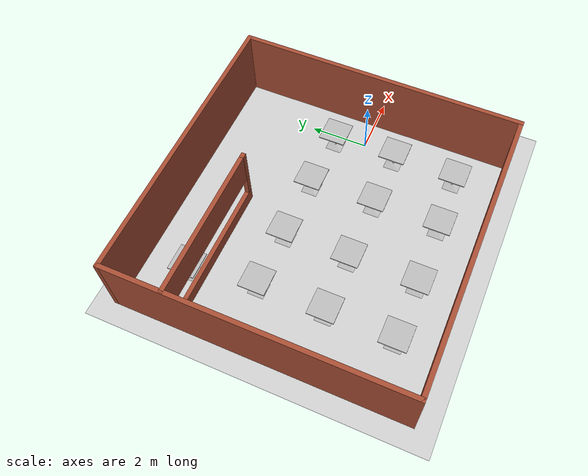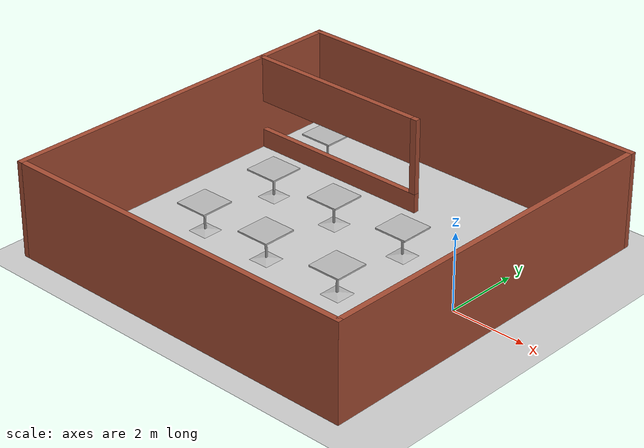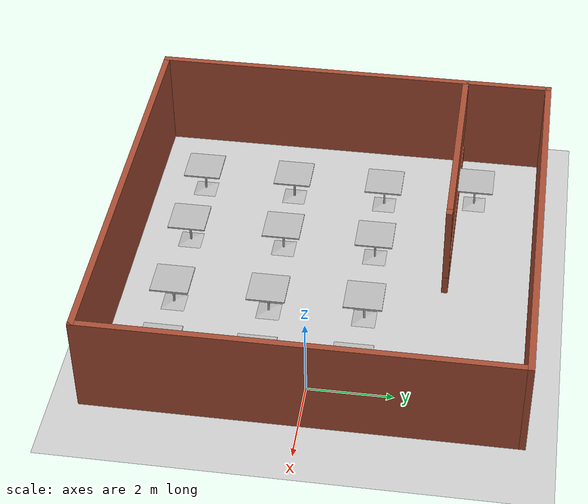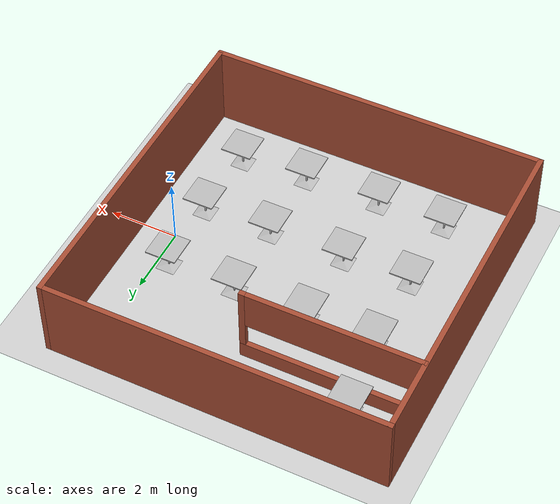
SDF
<sdf version="1.7">
 <world name="default">
  <plugin name="gazebo_ros_state" filename="libgazebo_ros_state.so"/>
  <light name="sun" type="directional">
   <pose>0 0 10 0 -0 0</pose>
   <diffuse>0.8 0.8 0.8 1</diffuse>
   <specular>0.2 0.2 0.2 1</specular>
   <attenuation>
    <range>1000</range>
    <constant>0.9</constant>
    <linear>0.01</linear>
    <quadratic>0.001</quadratic>
   </attenuation>
   <direction>-0.5 0.1 -0.9</direction>
   <spot><inner_angle>0</inner_angle><outer_angle>0</outer_angle><falloff>0</falloff></spot>
  </light>
  <model name="ground_plane">
   <static>1</static>
   <link name="link">
    <collision name="collision">
     <geometry><plane><normal>0 0 1</normal><size>100 100</size></plane></geometry>
     <surface><friction><ode><mu>100</mu><mu2>50</mu2></ode></friction></surface>
    </collision>
    <visual name="visual">
     <cast_shadows>0</cast_shadows>
     <geometry><plane><normal>0 0 1</normal><size>100 100</size></plane></geometry>
     <material>
      <script><uri>file://media/materials/scripts/gazebo.material</uri><name>Gazebo/Grey</name></script>
     </material>
    </visual>
   </link>
  </model>
  <gravity>0 0 -9.8</gravity>
  <magnetic_field>6e-06 2.3e-05 -4.2e-05</magnetic_field>
  <atmosphere type="adiabatic"/>
  <physics type="ode">
   <max_step_size>0.001</max_step_size>
   <real_time_factor>1</real_time_factor>
   <real_time_update_rate>1000</real_time_update_rate>
  </physics>
  <scene><ambient>0.4 0.4 0.4 1</ambient><background>0.7 0.7 0.7 1</background><shadows>1</shadows></scene>
  <audio><device>default</device></audio>
  <spherical_coordinates>
   <surface_model>EARTH_WGS84</surface_model>
   <latitude_deg>0</latitude_deg>
   <longitude_deg>0</longitude_deg>
   <elevation>0</elevation>
   <heading_deg>0</heading_deg>
  </spherical_coordinates>
  <model name="cafe_table">
   <static>1</static>
   <link name="link">
    <collision name="surface">
     <pose>0 0 0.755 0 -0 0</pose>
     <geometry><box><size>0.913 0.913 0.04</size></box></geometry>
    </collision>
    <collision name="column">
     <pose>0 0 0.37 0 -0 0</pose>
     <geometry><box><size>0.042 0.042 0.74</size></box></geometry>
    </collision>
    <collision name="base">
     <pose>0 0 0.02 0 -0 0</pose>
     <geometry><box><size>0.56 0.56 0.04</size></box></geometry>
    </collision>
    <visual name="visual">
     <geometry><mesh><uri>model://cafe_table/meshes/cafe_table.dae</uri></mesh></geometry>
    </visual>
   </link>
   <pose>-6.96077 3.3195 0 0 -0 0</pose>
  </model>
  <model name="cafe_table_0">
   <static>1</static>
   <link name="link">
    <collision name="surface">
     <pose>0 0 0.755 0 -0 0</pose>
     <geometry><box><size>0.913 0.913 0.04</size></box></geometry>
    </collision>
    <collision name="column">
     <pose>0 0 0.37 0 -0 0</pose>
     <geometry><box><size>0.042 0.042 0.74</size></box></geometry>
    </collision>
    <collision name="base">
     <pose>0 0 0.02 0 -0 0</pose>
     <geometry><box><size>0.56 0.56 0.04</size></box></geometry>
    </collision>
    <visual name="visual">
     <geometry><mesh><uri>model://cafe_table/meshes/cafe_table.dae</uri></mesh></geometry>
    </visual>
   </link>
   <pose>-6.63265 1.04198 0 0 -0 0</pose>
  </model>
  <model name="cafe_table_0_clone">
   <static>1</static>
   <link name="link">
    <collision name="surface">
     <pose>0 0 0.755 0 -0 0</pose>
     <geometry><box><size>0.913 0.913 0.04</size></box></geometry>
    </collision>
    <collision name="column">
     <pose>0 0 0.37 0 -0 0</pose>
     <geometry><box><size>0.042 0.042 0.74</size></box></geometry>
    </collision>
    <collision name="base">
     <pose>0 0 0.02 0 -0 0</pose>
     <geometry><box><size>0.56 0.56 0.04</size></box></geometry>
    </collision>
    <visual name="visual">
     <geometry><mesh><uri>model://cafe_table/meshes/cafe_table.dae</uri></mesh></geometry>
    </visual>
   </link>
   <pose>-6.64571 -3.59313 0 0 -0 0</pose>
  </model>
  <model name="cafe_table_0_clone_0">
   <static>1</static>
   <link name="link">
    <collision name="surface">
     <pose>0 0 0.755 0 -0 0</pose>
     <geometry><box><size>0.913 0.913 0.04</size></box></geometry>
    </collision>
    <collision name="column">
     <pose>0 0 0.37 0 -0 0</pose>
     <geometry><box><size>0.042 0.042 0.74</size></box></geometry>
    </collision>
    <collision name="base">
     <pose>0 0 0.02 0 -0 0</pose>
     <geometry><box><size>0.56 0.56 0.04</size></box></geometry>
    </collision>
    <visual name="visual">
     <geometry><mesh><uri>model://cafe_table/meshes/cafe_table.dae</uri></mesh></geometry>
    </visual>
   </link>
   <pose>-6.64567 -1.27882 0 0 -0 0</pose>
  </model>
  <model name="cafe_table_0_clone_1">
   <static>1</static>
   <link name="link">
    <collision name="surface">
     <pose>0 0 0.755 0 -0 0</pose>
     <geometry><box><size>0.913 0.913 0.04</size></box></geometry>
    </collision>
    <collision name="column">
     <pose>0 0 0.37 0 -0 0</pose>
     <geometry><box><size>0.042 0.042 0.74</size></box></geometry>
    </collision>
    <collision name="base">
     <pose>0 0 0.02 0 -0 0</pose>
     <geometry><box><size>0.56 0.56 0.04</size></box></geometry>
    </collision>
    <visual name="visual">
     <geometry><mesh><uri>model://cafe_table/meshes/cafe_table.dae</uri></mesh></geometry>
    </visual>
   </link>
   <pose>-4.63297 -1.24114 0 0 -0 0</pose>
  </model>
  <model name="cafe_table_0_clone_2">
   <static>1</static>
   <link name="link">
    <collision name="surface">
     <pose>0 0 0.755 0 -0 0</pose>
     <geometry><box><size>0.913 0.913 0.04</size></box></geometry>
    </collision>
    <collision name="column">
     <pose>0 0 0.37 0 -0 0</pose>
     <geometry><box><size>0.042 0.042 0.74</size></box></geometry>
    </collision>
    <collision name="base">
     <pose>0 0 0.02 0 -0 0</pose>
     <geometry><box><size>0.56 0.56 0.04</size></box></geometry>
    </collision>
    <visual name="visual">
     <geometry><mesh><uri>model://cafe_table/meshes/cafe_table.dae</uri></mesh></geometry>
    </visual>
   </link>
   <pose>-2.3738 -1.24345 0 0 -0 0</pose>
  </model>
  <model name="cafe_table_0_clone_3">
   <static>1</static>
   <link name="link">
    <collision name="surface">
     <pose>0 0 0.755 0 -0 0</pose>
     <geometry><box><size>0.913 0.913 0.04</size></box></geometry>
    </collision>
    <collision name="column">
     <pose>0 0 0.37 0 -0 0</pose>
     <geometry><box><size>0.042 0.042 0.74</size></box></geometry>
    </collision>
    <collision name="base">
     <pose>0 0 0.02 0 -0 0</pose>
     <geometry><box><size>0.56 0.56 0.04</size></box></geometry>
    </collision>
    <visual name="visual">
     <geometry><mesh><uri>model://cafe_table/meshes/cafe_table.dae</uri></mesh></geometry>
    </visual>
   </link>
   <pose>-0.322099 -1.21944 0 0 -0 0</pose>
  </model>
  <model name="cafe_table_0_clone_4">
   <static>1</static>
   <link name="link">
    <collision name="surface">
     <pose>0 0 0.755 0 -0 0</pose>
     <geometry><box><size>0.913 0.913 0.04</size></box></geometry>
    </collision>
    <collision name="column">
     <pose>0 0 0.37 0 -0 0</pose>
     <geometry><box><size>0.042 0.042 0.74</size></box></geometry>
    </collision>
    <collision name="base">
     <pose>0 0 0.02 0 -0 0</pose>
     <geometry><box><size>0.56 0.56 0.04</size></box></geometry>
    </collision>
    <visual name="visual">
     <geometry><mesh><uri>model://cafe_table/meshes/cafe_table.dae</uri></mesh></geometry>
    </visual>
   </link>
   <pose>-4.60561 1.0363 0 0 -0 0</pose>
  </model>
  <model name="cafe_table_0_clone_5">
   <static>1</static>
   <link name="link">
    <collision name="surface">
     <pose>0 0 0.755 0 -0 0</pose>
     <geometry><box><size>0.913 0.913 0.04</size></box></geometry>
    </collision>
    <collision name="column">
     <pose>0 0 0.37 0 -0 0</pose>
     <geometry><box><size>0.042 0.042 0.74</size></box></geometry>
    </collision>
    <collision name="base">
     <pose>0 0 0.02 0 -0 0</pose>
     <geometry><box><size>0.56 0.56 0.04</size></box></geometry>
    </collision>
    <visual name="visual">
     <geometry><mesh><uri>model://cafe_table/meshes/cafe_table.dae</uri></mesh></geometry>
    </visual>
   </link>
   <pose>-4.62958 -3.58316 0 0 -0 0</pose>
  </model>
  <model name="cafe_table_0_clone_6">
   <static>1</static>
   <link name="link">
    <collision name="surface">
     <pose>0 0 0.755 0 -0 0</pose>
     <geometry><box><size>0.913 0.913 0.04</size></box></geometry>
    </collision>
    <collision name="column">
     <pose>0 0 0.37 0 -0 0</pose>
     <geometry><box><size>0.042 0.042 0.74</size></box></geometry>
    </collision>
    <collision name="base">
     <pose>0 0 0.02 0 -0 0</pose>
     <geometry><box><size>0.56 0.56 0.04</size></box></geometry>
    </collision>
    <visual name="visual">
     <geometry><mesh><uri>model://cafe_table/meshes/cafe_table.dae</uri></mesh></geometry>
    </visual>
   </link>
   <pose>-2.37388 -3.53517 0 0 -0 0</pose>
  </model>
  <model name="cafe_table_0_clone_7">
   <static>1</static>
   <link name="link">
    <collision name="surface">
     <pose>0 0 0.755 0 -0 0</pose>
     <geometry><box><size>0.913 0.913 0.04</size></box></geometry>
    </collision>
    <collision name="column">
     <pose>0 0 0.37 0 -0 0</pose>
     <geometry><box><size>0.042 0.042 0.74</size></box></geometry>
    </collision>
    <collision name="base">
     <pose>0 0 0.02 0 -0 0</pose>
     <geometry><box><size>0.56 0.56 0.04</size></box></geometry>
    </collision>
    <visual name="visual">
     <geometry><mesh><uri>model://cafe_table/meshes/cafe_table.dae</uri></mesh></geometry>
    </visual>
   </link>
   <pose>-2.42188 1.0363 0 0 -0 0</pose>
  </model>
  <model name="cafe_table_0_clone_8">
   <static>1</static>
   <link name="link">
    <collision name="surface">
     <pose>0 0 0.755 0 -0 0</pose>
     <geometry><box><size>0.913 0.913 0.04</size></box></geometry>
    </collision>
    <collision name="column">
     <pose>0 0 0.37 0 -0 0</pose>
     <geometry><box><size>0.042 0.042 0.74</size></box></geometry>
    </collision>
    <collision name="base">
     <pose>0 0 0.02 0 -0 0</pose>
     <geometry><box><size>0.56 0.56 0.04</size></box></geometry>
    </collision>
    <visual name="visual">
     <geometry><mesh><uri>model://cafe_table/meshes/cafe_table.dae</uri></mesh></geometry>
    </visual>
   </link>
   <pose>-0.358159 0.988297 0 0 -0 0</pose>
  </model>
  <model name="cafe_table_0_clone_9">
   <static>1</static>
   <link name="link">
    <collision name="surface">
     <pose>0 0 0.755 0 -0 0</pose>
     <geometry><box><size>0.913 0.913 0.04</size></box></geometry>
    </collision>
    <collision name="column">
     <pose>0 0 0.37 0 -0 0</pose>
     <geometry><box><size>0.042 0.042 0.74</size></box></geometry>
    </collision>
    <collision name="base">
     <pose>0 0 0.02 0 -0 0</pose>
     <geometry><box><size>0.56 0.56 0.04</size></box></geometry>
    </collision>
    <visual name="visual">
     <geometry><mesh><uri>model://cafe_table/meshes/cafe_table.dae</uri></mesh></geometry>
    </visual>
   </link>
   <pose>-0.382122 -3.41519 0 0 -0 0</pose>
  </model>
  <model name="kitchen_0">
   <pose>-0.999896 2.51452 0 0 -0 0</pose>
   <link name="Wall_35">
    <collision name="Wall_35_Collision">
     <geometry><box><size>10 0.15 2.5</size></box></geometry>
     <pose>0 0 1.25 0 -0 0</pose>
    </collision>
    <visual name="Wall_35_Visual">
     <pose>0 0 1.25 0 -0 0</pose>
     <geometry><box><size>10 0.15 2.5</size></box></geometry>
     <material>
      <script><uri>file://media/materials/scripts/gazebo.material</uri><name>Gazebo/Bricks</name></script>
      <ambient>1 1 1 1</ambient>
     </material>
     <meta><layer>0</layer></meta>
    </visual>
    <pose>-2.84879 -7.4306 0 0 -0 0</pose>
   </link>
   <link name="Wall_36">
    <collision name="Wall_36_Collision">
     <geometry><box><size>10 0.15 2.5</size></box></geometry>
     <pose>0 0 1.25 0 -0 0</pose>
    </collision>
    <visual name="Wall_36_Visual">
     <pose>0 0 1.25 0 -0 0</pose>
     <geometry><box><size>10 0.15 2.5</size></box></geometry>
     <material>
      <script><uri>file://media/materials/scripts/gazebo.material</uri><name>Gazebo/Bricks</name></script>
      <ambient>1 1 1 1</ambient>
     </material>
     <meta><layer>0</layer></meta>
    </visual>
    <pose>2.07621 -2.5056 0 0 -0 1.5708</pose>
   </link>
   <link name="Wall_37">
    <collision name="Wall_37_Collision">
     <geometry><box><size>10 0.15 2.5</size></box></geometry>
     <pose>0 0 1.25 0 -0 0</pose>
    </collision>
    <visual name="Wall_37_Visual">
     <pose>0 0 1.25 0 -0 0</pose>
     <geometry><box><size>10 0.15 2.5</size></box></geometry>
     <material>
      <script><uri>file://media/materials/scripts/gazebo.material</uri><name>Gazebo/Bricks</name></script>
      <ambient>1 1 1 1</ambient>
     </material>
     <meta><layer>0</layer></meta>
    </visual>
    <pose>-2.84879 2.4194 0 0 -0 3.14159</pose>
   </link>
   <link name="Wall_38">
    <collision name="Wall_38_Collision">
     <geometry><box><size>10 0.15 2.5</size></box></geometry>
     <pose>0 0 1.25 0 -0 0</pose>
    </collision>
    <visual name="Wall_38_Visual">
     <pose>0 0 1.25 0 -0 0</pose>
     <geometry><box><size>10 0.15 2.5</size></box></geometry>
     <material>
      <script><uri>file://media/materials/scripts/gazebo.material</uri><name>Gazebo/Bricks</name></script>
      <ambient>1 1 1 1</ambient>
     </material>
     <meta><layer>0</layer></meta>
    </visual>
    <pose>-7.77379 -2.5056 0 0 -0 -1.5708</pose>
   </link>
   <link name="Wall_40">
    <pose>-5.19337 0.325862 0 0 -0 0</pose>
    <visual name="Wall_40_Visual_0">
     <pose>-2.59038 0 1.25 0 -0 0</pose>
     <geometry><box><size>0.069235 0.15 2.5</size></box></geometry>
     <material>
      <script><uri>file://media/materials/scripts/gazebo.material</uri><name>Gazebo/Bricks</name></script>
      <ambient>1 1 1 1</ambient>
     </material>
     <meta><layer>0</layer></meta>
    </visual>
    <collision name="Wall_40_Collision_0">
     <geometry><box><size>0.069235 0.15 2.5</size></box></geometry>
     <pose>-2.59038 0 1.25 0 -0 0</pose>
    </collision>
    <visual name="Wall_40_Visual_1">
     <pose>0.034617 0 0.25 0 -0 0</pose>
     <geometry><box><size>5.18077 0.15 0.5</size></box></geometry>
     <material>
      <script><uri>file://media/materials/scripts/gazebo.material</uri><name>Gazebo/Bricks</name></script>
      <ambient>1 1 1 1</ambient>
     </material>
     <meta><layer>0</layer></meta>
    </visual>
    <collision name="Wall_40_Collision_1">
     <geometry><box><size>5.18077 0.15 0.5</size></box></geometry>
     <pose>0.034617 0 0.25 0 -0 0</pose>
    </collision>
    <visual name="Wall_40_Visual_2">
     <pose>2.53462 0 1.5 0 -0 0</pose>
     <geometry><box><size>0.180765 0.15 2</size></box></geometry>
     <material>
      <script><uri>file://media/materials/scripts/gazebo.material</uri><name>Gazebo/Bricks</name></script>
      <ambient>1 1 1 1</ambient>
     </material>
     <meta><layer>0</layer></meta>
    </visual>
    <collision name="Wall_40_Collision_2">
     <geometry><box><size>0.180765 0.15 2</size></box></geometry>
     <pose>2.53462 0 1.5 0 -0 0</pose>
    </collision>
    <visual name="Wall_40_Visual_3">
     <pose>-0.055765 0 1.9 0 -0 0</pose>
     <geometry><box><size>5 0.15 1.2</size></box></geometry>
     <material>
      <script><uri>file://media/materials/scripts/gazebo.material</uri><name>Gazebo/Bricks</name></script>
      <ambient>1 1 1 1</ambient>
     </material>
     <meta><layer>0</layer></meta>
    </visual>
    <collision name="Wall_40_Collision_3">
     <geometry><box><size>5 0.15 1.2</size></box></geometry>
     <pose>-0.055765 0 1.9 0 -0 0</pose>
    </collision>
   </link>
   <static>1</static>
  </model>
 </world>
</sdf>
